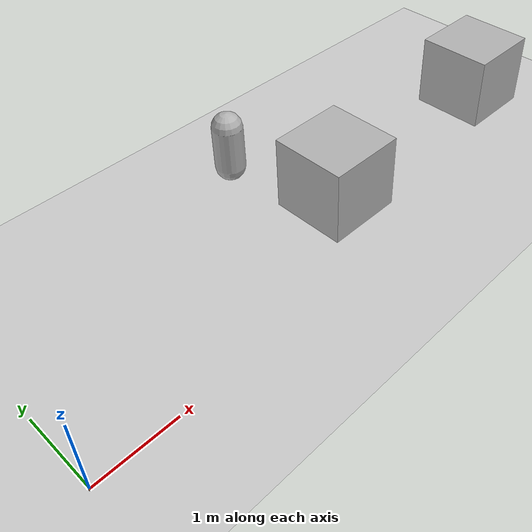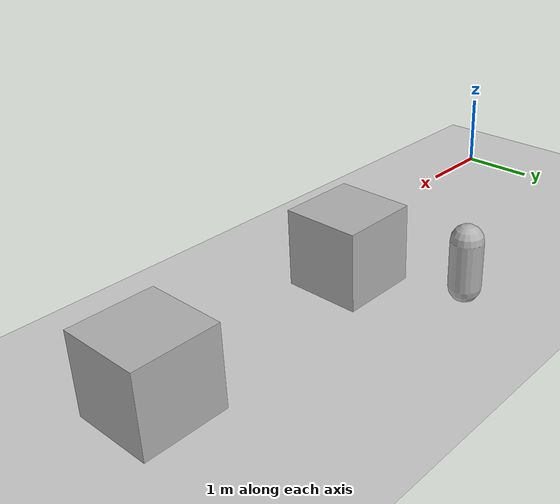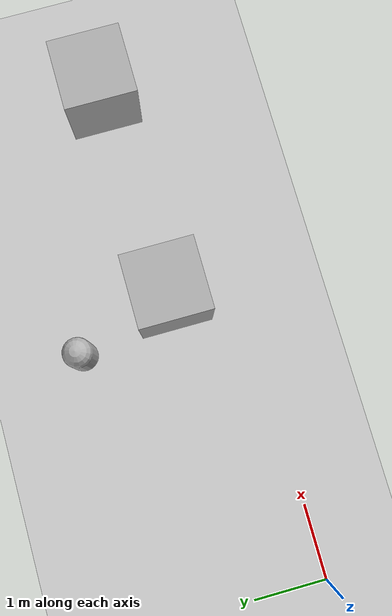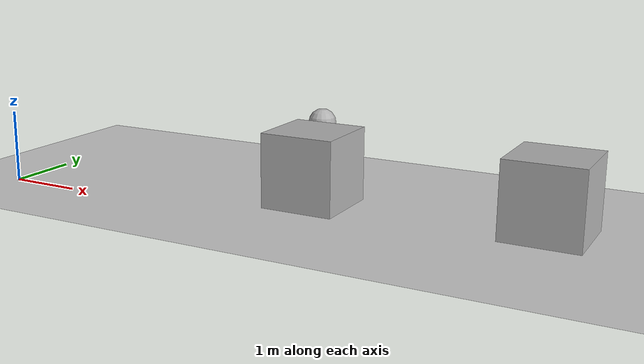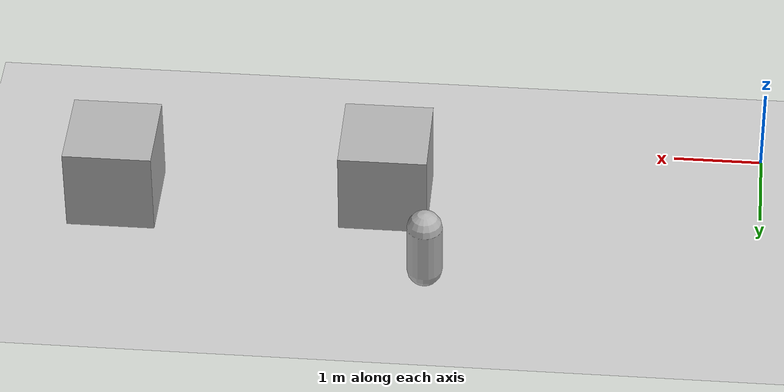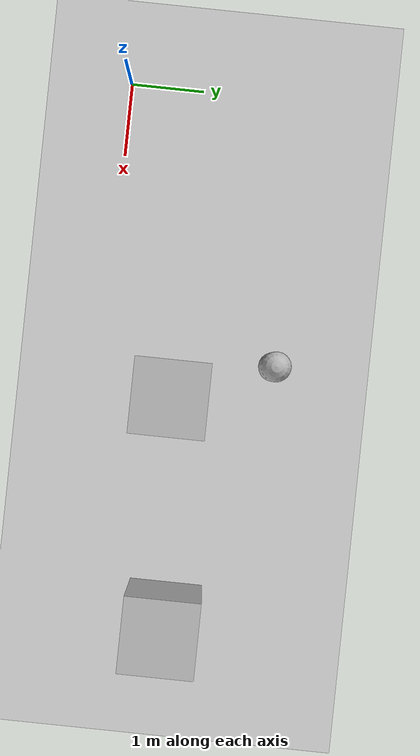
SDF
<sdf version="1.10">
 <world name="empty">
  <scene>
   <shadows>false</shadows>
   <ambient>0.400000006 0.400000006 0.400000006 1</ambient>
   <background>0.699999988 0.699999988 0.699999988 1</background>
  </scene>
  <physics name="1ms" type="ignored">
   <max_step_size>0.001</max_step_size>
   <real_time_factor>1</real_time_factor>
   <real_time_update_rate>25</real_time_update_rate>
  </physics>
  <plugin name="gz::sim::systems::Physics" filename="gz-sim-physics-system"/>
  <plugin name="gz::sim::systems::UserCommands" filename="gz-sim-user-commands-system"/>
  <plugin name="gz::sim::systems::SceneBroadcaster" filename="gz-sim-scene-broadcaster-system"/>
  <plugin name="gz::sim::systems::Sensors" filename="gz-sim-sensors-system">
   <render_engine>ogre2</render_engine>
  </plugin>
  <plugin name="gz::sim::systems::Contact" filename="gz-sim-contact-system"/>
  <gravity>0 0 -9.8000000000000007</gravity>
  <magnetic_field>5.5644999999999998e-06 2.2875799999999999e-05 -4.2388400000000002e-05</magnetic_field>
  <atmosphere type="adiabatic"/>
  <model name="ground_plane">
   <static>true</static>
   <link name="link">
    <collision name="collision">
     <geometry><plane><normal>0 0 1</normal><size>100 100</size></plane></geometry>
    </collision>
    <visual name="visual">
     <geometry><plane><normal>0 0 1</normal><size>100 100</size></plane></geometry>
     <material>
      <ambient>0.800000012 0.800000012 0.800000012 1</ambient>
      <diffuse>0.800000012 0.800000012 0.800000012 1</diffuse>
      <specular>0.800000012 0.800000012 0.800000012 1</specular>
     </material>
    </visual>
    <inertial>
     <mass>1</mass>
     <inertia><ixx>1</ixx><ixy>0</ixy><ixz>0</ixz><iyy>1</iyy><iyz>0</iyz><izz>1</izz></inertia>
    </inertial>
   </link>
  </model>
  <model name="my_world_model">
   <static>true</static>
   <link name="link">
    <visual name="visual">
     <geometry>
      <mesh>
       <uri>file:///bmstu/ros2_ws/src/main/models/my_world_model/model:///bmstu/ros2_ws/src/main/models/my_world_model/meshes/World.obj</uri>
       <scale>0.001 0.001 0.001</scale>
      </mesh>
     </geometry>
     <material>
      <ambient>0.800000012 0.800000012 0.800000012 1</ambient>
      <diffuse>0.5 0.300000012 0.200000003 1</diffuse>
      <specular>0.800000012 0.800000012 0.800000012 1</specular>
     </material>
    </visual>
    <collision name="collision">
     <geometry>
      <mesh>
       <uri>file:///bmstu/ros2_ws/src/main/models/my_world_model/model:///bmstu/ros2_ws/src/main/models/my_world_model/meshes/World.obj</uri>
       <scale>0.001 0.001 0.001</scale>
      </mesh>
     </geometry>
    </collision>
    <inertial>
     <mass>1</mass>
     <inertia><ixx>1</ixx><ixy>0</ixy><ixz>0</ixz><iyy>1</iyy><iyz>0</iyz><izz>1</izz></inertia>
    </inertial>
   </link>
  </model>
  <model name="box">
   <pose>4.256751826940862 1.0016881556735806 0.49999999990199806 6.2287739151293738e-22 9.3279666454713669e-22 -3.6315533669320137e-22</pose>
   <link name="box_link">
    <inertial>
     <inertia><ixx>0.16666</ixx><ixy>0</ixy><ixz>0</ixz><iyy>0.16666</iyy><iyz>0</iyz><izz>0.16666</izz></inertia>
     <mass>1</mass>
    </inertial>
    <collision name="box_collision"><geometry><box><size>1 1 1</size></box></geometry></collision>
    <visual name="box_visual">
     <geometry><box><size>1 1 1</size></box></geometry>
     <material>
      <ambient>0.300000012 0.300000012 0.300000012 1</ambient>
      <diffuse>0.699999988 0.699999988 0.699999988 1</diffuse>
      <specular>1 1 1 1</specular>
     </material>
    </visual>
   </link>
   <static>false</static>
  </model>
  <model name="box_0">
   <pose>7.3354242387478852 1.1793236354167376 0.49999999990199806 6.2287739151293738e-22 9.3279666454713669e-22 -3.6315533669320137e-22</pose>
   <link name="box_link">
    <inertial>
     <inertia><ixx>0.16666</ixx><ixy>0</ixy><ixz>0</ixz><iyy>0.16666</iyy><iyz>0</iyz><izz>0.16666</izz></inertia>
     <mass>1</mass>
    </inertial>
    <collision name="box_collision"><geometry><box><size>1 1 1</size></box></geometry></collision>
    <visual name="box_visual">
     <geometry><box><size>1 1 1</size></box></geometry>
     <material>
      <ambient>0.300000012 0.300000012 0.300000012 1</ambient>
      <diffuse>0.699999988 0.699999988 0.699999988 1</diffuse>
      <specular>1 1 1 1</specular>
     </material>
    </visual>
   </link>
   <static>false</static>
  </model>
  <model name="capsule">
   <pose>3.7135111676159376 2.3350288114413038 0.499999999902001 0 0 0</pose>
   <link name="capsule_link">
    <inertial>
     <inertia>
      <ixx>0.074153999999999998</ixx>
      <ixy>0</ixy>
      <ixz>0</ixz>
      <iyy>0.074153999999999998</iyy>
      <iyz>0</iyz>
      <izz>0.018769000000000001</izz>
     </inertia>
     <mass>1</mass>
    </inertial>
    <collision name="capsule_collision">
     <geometry>
      <capsule><radius>0.20000000000000001</radius><length>0.59999999999999998</length></capsule>
     </geometry>
    </collision>
    <visual name="capsule_visual">
     <geometry>
      <capsule><radius>0.20000000000000001</radius><length>0.59999999999999998</length></capsule>
     </geometry>
     <material>
      <ambient>0.300000012 0.300000012 0.300000012 1</ambient>
      <diffuse>0.699999988 0.699999988 0.699999988 1</diffuse>
      <specular>1 1 1 1</specular>
     </material>
    </visual>
   </link>
   <static>false</static>
  </model>
  <light name="sun" type="directional">
   <pose>0 0 10 0 0 0</pose>
   <intensity>1</intensity>
   <direction>-0.5 0.10000000000000001 -0.90000000000000002</direction>
   <diffuse>0.800000012 0.800000012 0.800000012 1</diffuse>
   <specular>0.200000003 0.200000003 0.200000003 1</specular>
   <attenuation>
    <range>1000</range>
    <linear>0.01</linear>
    <constant>0.90000000000000002</constant>
    <quadratic>0.001</quadratic>
   </attenuation>
   <spot><inner_angle>0</inner_angle><outer_angle>0</outer_angle><falloff>0</falloff></spot>
  </light>
 </world>
</sdf>
